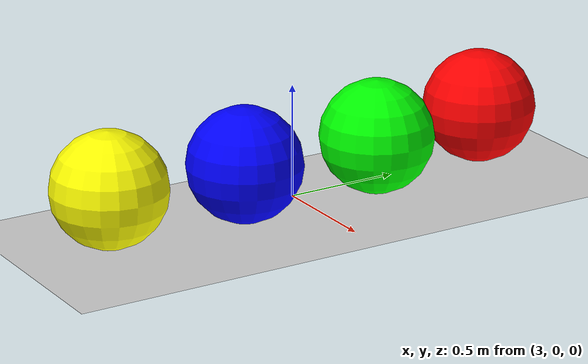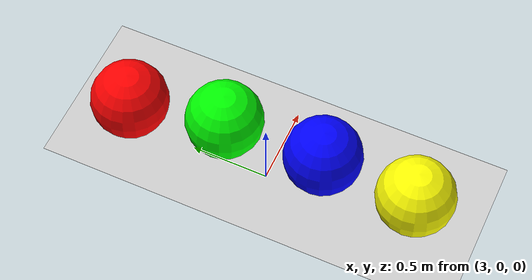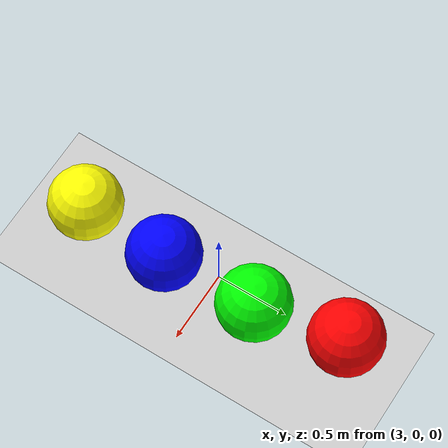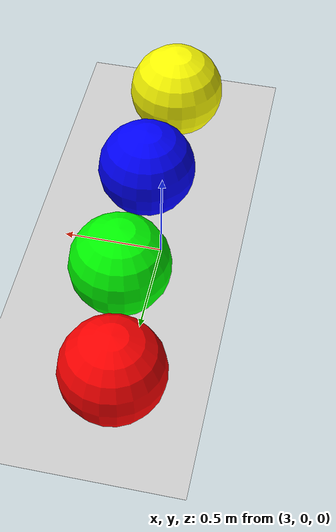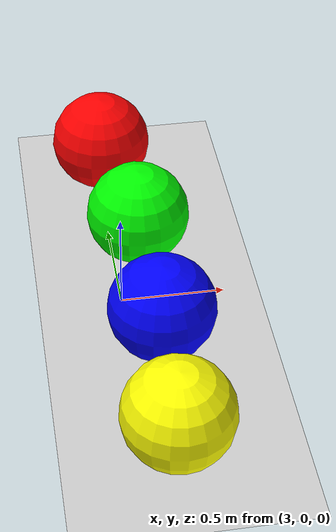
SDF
<sdf version="1.10">
 <world name="default">
  <physics name="1ms" type="ignored">
   <max_step_size>0.001</max_step_size>
   <real_time_factor>1</real_time_factor>
   <real_time_update_rate>1000</real_time_update_rate>
  </physics>
  <plugin name="gz::sim::systems::Physics" filename="gz-sim-physics-system"/>
  <plugin name="gz::sim::systems::UserCommands" filename="gz-sim-user-commands-system"/>
  <plugin name="gz::sim::systems::SceneBroadcaster" filename="gz-sim-scene-broadcaster-system"/>
  <scene>
   <ambient>0.400000006 0.400000006 0.400000006 1</ambient>
   <background>0.699999988 0.699999988 0.699999988 1</background>
   <shadows>false</shadows>
  </scene>
  <gravity>0 0 -9.8000000000000007</gravity>
  <magnetic_field>5.5644999999999998e-06 2.2875799999999999e-05 -4.2388400000000002e-05</magnetic_field>
  <atmosphere type="adiabatic"/>
  <include>
   <uri>file:///home/emanuelv/ros2_ws/install/puzzlebot_gazebo/share/puzzlebot_gazebo/models/puzzlebot_base</uri>
   <name>puzzlebot_base</name>
  </include>
  <model name="sphere_red">
   <pose>3.0246200561523438 0.94768214225769043 0.24999999990200097 0 0 0</pose>
   <link name="sphere_link">
    <inertial>
     <inertia>
      <ixx>0.10000000000000001</ixx>
      <ixy>0</ixy>
      <ixz>0</ixz>
      <iyy>0.10000000000000001</iyy>
      <iyz>0</iyz>
      <izz>0.10000000000000001</izz>
     </inertia>
     <mass>1</mass>
    </inertial>
    <collision name="sphere_collision"><geometry><sphere><radius>0.25</radius></sphere></geometry></collision>
    <visual name="sphere_visual">
     <geometry><sphere><radius>0.25</radius></sphere></geometry>
     <material><ambient>1 0 0 1</ambient><diffuse>1 0 0 1</diffuse><specular>1 1 1 1</specular></material>
    </visual>
   </link>
   <static>false</static>
  </model>
  <model name="sphere_green">
   <pose>3.1312100887298584 0.34220102429389954 0.24999999990200097 0 0 0</pose>
   <link name="sphere_link">
    <inertial>
     <inertia>
      <ixx>0.10000000000000001</ixx>
      <ixy>0</ixy>
      <ixz>0</ixz>
      <iyy>0.10000000000000001</iyy>
      <iyz>0</iyz>
      <izz>0.10000000000000001</izz>
     </inertia>
     <mass>1</mass>
    </inertial>
    <collision name="sphere_collision"><geometry><sphere><radius>0.25</radius></sphere></geometry></collision>
    <visual name="sphere_visual">
     <geometry><sphere><radius>0.25</radius></sphere></geometry>
     <material><ambient>0 1 0 1</ambient><diffuse>0 1 0 1</diffuse><specular>1 1 1 1</specular></material>
    </visual>
   </link>
   <static>false</static>
  </model>
  <model name="sphere_yellow">
   <pose>3.1118299961090088 -0.93920224905014038 0.24999999990200097 0 0 0</pose>
   <link name="sphere_link">
    <inertial>
     <inertia>
      <ixx>0.10000000000000001</ixx>
      <ixy>0</ixy>
      <ixz>0</ixz>
      <iyy>0.10000000000000001</iyy>
      <iyz>0</iyz>
      <izz>0.10000000000000001</izz>
     </inertia>
     <mass>1</mass>
    </inertial>
    <collision name="sphere_collision"><geometry><sphere><radius>0.25</radius></sphere></geometry></collision>
    <visual name="sphere_visual">
     <geometry><sphere><radius>0.25</radius></sphere></geometry>
     <material><ambient>1 1 0 1</ambient><diffuse>1 1 0 1</diffuse><specular>1 1 1 1</specular></material>
    </visual>
   </link>
   <static>false</static>
  </model>
  <model name="sphere_blue">
   <pose>3.1435799598693848 -0.31916335225105286 0.24999999990200097 0 0 0</pose>
   <link name="sphere_link">
    <inertial>
     <inertia>
      <ixx>0.10000000000000001</ixx>
      <ixy>0</ixy>
      <ixz>0</ixz>
      <iyy>0.10000000000000001</iyy>
      <iyz>0</iyz>
      <izz>0.10000000000000001</izz>
     </inertia>
     <mass>1</mass>
    </inertial>
    <collision name="sphere_collision"><geometry><sphere><radius>0.25</radius></sphere></geometry></collision>
    <visual name="sphere_visual">
     <geometry><sphere><radius>0.25</radius></sphere></geometry>
     <material><ambient>0 0 1 1</ambient><diffuse>0 0 1 1</diffuse><specular>1 1 1 1</specular></material>
    </visual>
   </link>
   <static>false</static>
  </model>
  <light name="light1" type="directional">
   <pose>2 2 10 0 0 0</pose>
   <cast_shadows>false</cast_shadows>
   <intensity>1</intensity>
   <direction>-0.5 0.10000000000000001 -0.90000000000000002</direction>
   <diffuse>0.800000012 0.800000012 0.800000012 1</diffuse>
   <specular>0.200000003 0.200000003 0.200000003 1</specular>
   <attenuation>
    <range>1000</range>
    <linear>0.0099999997764825821</linear>
    <constant>0.89999997615814209</constant>
    <quadratic>0.0010000000474974513</quadratic>
   </attenuation>
   <spot><inner_angle>0</inner_angle><outer_angle>0</outer_angle><falloff>0</falloff></spot>
  </light>
  <light name="light2" type="directional">
   <pose>-2 -2 10 0 0 0</pose>
   <cast_shadows>false</cast_shadows>
   <intensity>1</intensity>
   <direction>-0.5 0.10000000000000001 -0.90000000000000002</direction>
   <diffuse>0.800000012 0.800000012 0.800000012 1</diffuse>
   <specular>0.200000003 0.200000003 0.200000003 1</specular>
   <attenuation>
    <range>1000</range>
    <linear>0.0099999997764825821</linear>
    <constant>0.89999997615814209</constant>
    <quadratic>0.0010000000474974513</quadratic>
   </attenuation>
   <spot><inner_angle>0</inner_angle><outer_angle>0</outer_angle><falloff>0</falloff></spot>
  </light>
  <light name="directionallight" type="directional">
   <pose>-0.82276611759215634 -0.74265423293040689 2 0 0 0</pose>
   <intensity>1</intensity>
   <direction>0 0 -1</direction>
   <diffuse>0.800000012 0.800000012 0.800000012 1</diffuse>
   <specular>0.200000003 0.200000003 0.200000003 1</specular>
   <attenuation>
    <range>1000</range>
    <linear>0.01</linear>
    <constant>0.90000000000000002</constant>
    <quadratic>0.001</quadratic>
   </attenuation>
   <spot><inner_angle>0</inner_angle><outer_angle>0</outer_angle><falloff>0</falloff></spot>
  </light>
  <light name="pointlight" type="point">
   <pose>-0.17553855544654429 1.3274121544112576 2 0 0 0</pose>
   <cast_shadows>false</cast_shadows>
   <intensity>1</intensity>
   <direction>0 0 -1</direction>
   <diffuse>0.5 0.5 0.5 1</diffuse>
   <specular>0.5 0.5 0.5 1</specular>
   <attenuation>
    <range>4</range>
    <linear>0.5</linear>
    <constant>0.20000000000000001</constant>
    <quadratic>0.01</quadratic>
   </attenuation>
   <spot><inner_angle>0</inner_angle><outer_angle>0</outer_angle><falloff>0</falloff></spot>
  </light>
  <light name="pointlight_0" type="point">
   <pose>0.43074946711978601 -0.88387301529881401 2 0 0 0</pose>
   <cast_shadows>false</cast_shadows>
   <intensity>1</intensity>
   <direction>0 0 -1</direction>
   <diffuse>0.5 0.5 0.5 1</diffuse>
   <specular>0.5 0.5 0.5 1</specular>
   <attenuation>
    <range>4</range>
    <linear>0.5</linear>
    <constant>0.20000000000000001</constant>
    <quadratic>0.01</quadratic>
   </attenuation>
   <spot><inner_angle>0</inner_angle><outer_angle>0</outer_angle><falloff>0</falloff></spot>
  </light>
 </world>
</sdf>

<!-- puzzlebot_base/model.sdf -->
<sdf version="1.9">
    <model name="puzzlebot_base">
        <static>true</static>
        <link name="link">
            <collision name="collision">
                <geometry>
                    <plane>
                        <normal>0 0 1</normal>
                        <size>10.0 10.0</size>
                    </plane>
                </geometry>
                <surface>
                    <contact>
                        <collide_bitmask>0xffff</collide_bitmask>
                    </contact>
                    <friction>
                        <ode>
                            <mu>100</mu>
                            <mu2>50</mu2>
                        </ode>
                    </friction>
                </surface>
            </collision>

            <visual name="puzzlebot_visual">
                <pose>0 0 0.001 0 0 0</pose>
                <cast_shadows>false</cast_shadows>
                <geometry>
                    <plane>
                        <normal>0 0 1</normal>
                        <size>8.0 8.0</size>
                    </plane>
                </geometry>

                <material>
                    <ambient>0.8 0.8 0.8 1</ambient>
                    <diffuse>0.8 0.8 0.8 1</diffuse>
                    <specular>1 0.8 0.8 1</specular>
                    <pbr>
                        <metal>
                        <albedo_map>model://puzzlebot_base/materials/textures/puzzlebot_wood_6.png</albedo_map>
                        <normal_map>model://puzzlebot_base/materials/textures/puzzlebot_wood_6.png</normal_map>
                        </metal>
                    </pbr>
                </material>
            </visual>
        </link>
    </model>
</sdf>
